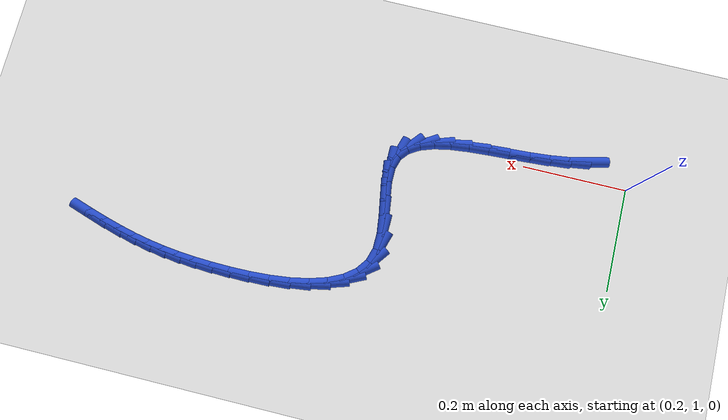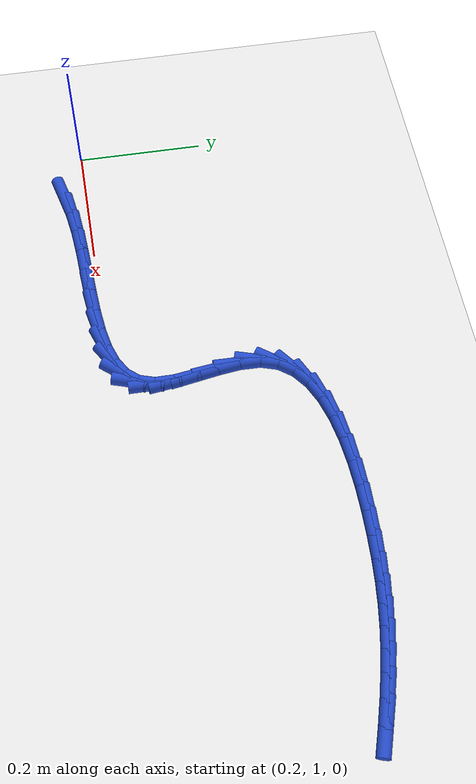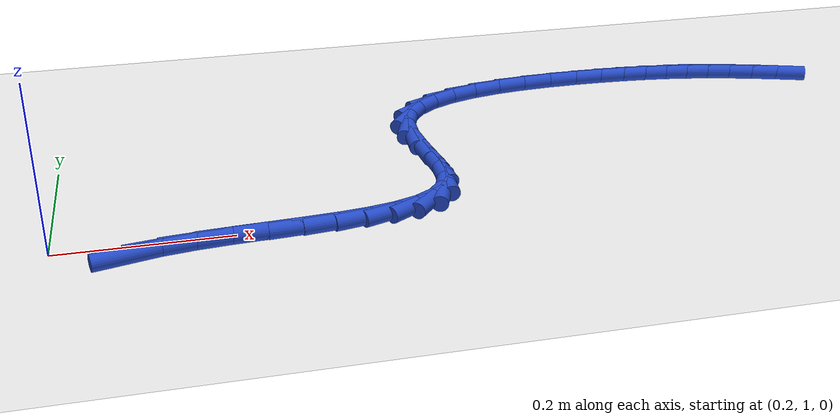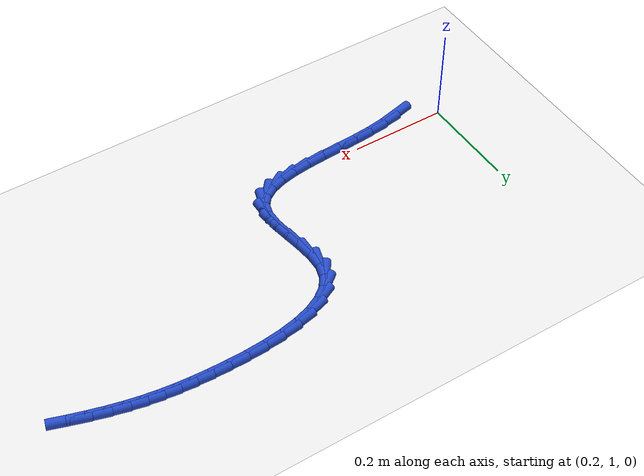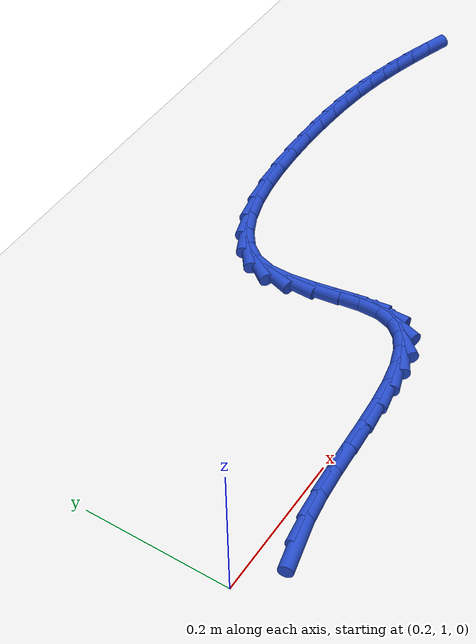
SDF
<sdf version="1.6">
 <world name="default">
  <model name="ground_plane">
   <static>1</static>
   <link name="link">
    <collision name="collision">
     <geometry><plane><normal>0 0 1</normal><size>100 100</size></plane></geometry>
     <surface><friction><ode><mu>100</mu><mu2>50</mu2></ode></friction></surface>
    </collision>
    <visual name="visual">
     <cast_shadows>0</cast_shadows>
     <geometry><plane><normal>0 0 1</normal><size>100 100</size></plane></geometry>
     <material>
      <script><uri>file://media/materials/scripts/gazebo.material</uri><name>Gazebo/WhiteGlow</name></script>
     </material>
    </visual>
   </link>
  </model>
  <model name="line">
   <link name="link_32">
    <pose>0.2845700762271755 0.9653608991584091 0.01 0 1.57 0.2323511931777744</pose>
    <collision name="collision">
     <geometry><cylinder><radius>0.01</radius><length>0.08</length></cylinder></geometry>
    </collision>
    <visual name="visual">
     <material>
      <script><name>Gazebo/Blue</name><uri>file://media/materials/scripts/gazebo.material</uri></script>
     </material>
     <geometry><cylinder><radius>0.01</radius><length>0.08</length></cylinder></geometry>
    </visual>
   </link>
   <link name="link_33">
    <pose>0.31895210548877895 0.9734965408472075 0.01 0 1.57 0.14312621092465375</pose>
    <collision name="collision">
     <geometry><cylinder><radius>0.01</radius><length>0.08</length></cylinder></geometry>
    </collision>
    <visual name="visual">
     <material>
      <script><name>Gazebo/Blue</name><uri>file://media/materials/scripts/gazebo.material</uri></script>
     </material>
     <geometry><cylinder><radius>0.01</radius><length>0.08</length></cylinder></geometry>
    </visual>
   </link>
   <link name="link_34">
    <pose>0.35610202098449195 0.97885027479149 0.01 0 1.57 0.08759053638613644</pose>
    <collision name="collision">
     <geometry><cylinder><radius>0.01</radius><length>0.08</length></cylinder></geometry>
    </collision>
    <visual name="visual">
     <material>
      <script><name>Gazebo/Blue</name><uri>file://media/materials/scripts/gazebo.material</uri></script>
     </material>
     <geometry><cylinder><radius>0.01</radius><length>0.08</length></cylinder></geometry>
    </visual>
   </link>
   <link name="link_35">
    <pose>0.3949763139941072 0.9822640296616401 0.01 0 1.57 0.058476926967701306</pose>
    <collision name="collision">
     <geometry><cylinder><radius>0.01</radius><length>0.08</length></cylinder></geometry>
    </collision>
    <visual name="visual">
     <material>
      <script><name>Gazebo/Blue</name><uri>file://media/materials/scripts/gazebo.material</uri></script>
     </material>
     <geometry><cylinder><radius>0.01</radius><length>0.08</length></cylinder></geometry>
    </visual>
   </link>
   <link name="link_36">
    <pose>0.43453147579741785 0.9845797341280421 0.01 0 1.57 0.052502107369102845</pose>
    <collision name="collision">
     <geometry><cylinder><radius>0.01</radius><length>0.08</length></cylinder></geometry>
    </collision>
    <visual name="visual">
     <material>
      <script><name>Gazebo/Blue</name><uri>file://media/materials/scripts/gazebo.material</uri></script>
     </material>
     <geometry><cylinder><radius>0.01</radius><length>0.08</length></cylinder></geometry>
    </visual>
   </link>
   <link name="link_37">
    <pose>0.47372399767421725 0.9866393168610799 0.01 0 1.57 0.06989504903849242</pose>
    <collision name="collision">
     <geometry><cylinder><radius>0.01</radius><length>0.08</length></cylinder></geometry>
    </collision>
    <visual name="visual">
     <material>
      <script><name>Gazebo/Blue</name><uri>file://media/materials/scripts/gazebo.material</uri></script>
     </material>
     <geometry><cylinder><radius>0.01</radius><length>0.08</length></cylinder></geometry>
    </visual>
   </link>
   <link name="link_38">
    <pose>0.5115103709042979 0.9892847065311378 0.01 0 1.57 0.11475964148842825</pose>
    <collision name="collision">
     <geometry><cylinder><radius>0.01</radius><length>0.08</length></cylinder></geometry>
    </collision>
    <visual name="visual">
     <material>
      <script><name>Gazebo/Blue</name><uri>file://media/materials/scripts/gazebo.material</uri></script>
     </material>
     <geometry><cylinder><radius>0.01</radius><length>0.08</length></cylinder></geometry>
    </visual>
   </link>
   <link name="link_39">
    <pose>0.5468470867674531 0.9933578318085992 0.01 0 1.57 0.19661275269953515</pose>
    <collision name="collision">
     <geometry><cylinder><radius>0.01</radius><length>0.08</length></cylinder></geometry>
    </collision>
    <visual name="visual">
     <material>
      <script><name>Gazebo/Blue</name><uri>file://media/materials/scripts/gazebo.material</uri></script>
     </material>
     <geometry><cylinder><radius>0.01</radius><length>0.08</length></cylinder></geometry>
    </visual>
   </link>
   <link name="link_40">
    <pose>0.5786906365434755 0.9997006213638486 0.01 0 1.57 0.33330979281576223</pose>
    <collision name="collision">
     <geometry><cylinder><radius>0.01</radius><length>0.08</length></cylinder></geometry>
    </collision>
    <visual name="visual">
     <material>
      <script><name>Gazebo/Blue</name><uri>file://media/materials/scripts/gazebo.material</uri></script>
     </material>
     <geometry><cylinder><radius>0.01</radius><length>0.08</length></cylinder></geometry>
    </visual>
   </link>
   <link name="link_41">
    <pose>0.6059975115121591 1.0091550038672705 0.01 0 1.57 0.5529103301493403</pose>
    <collision name="collision">
     <geometry><cylinder><radius>0.01</radius><length>0.08</length></cylinder></geometry>
    </collision>
    <visual name="visual">
     <material>
      <script><name>Gazebo/Blue</name><uri>file://media/materials/scripts/gazebo.material</uri></script>
     </material>
     <geometry><cylinder><radius>0.01</radius><length>0.08</length></cylinder></geometry>
    </visual>
   </link>
   <link name="link_42">
    <pose>0.6277242029532957 1.0225629079892478 0.01 0 1.57 0.878216688704699</pose>
    <collision name="collision">
     <geometry><cylinder><radius>0.01</radius><length>0.08</length></cylinder></geometry>
    </collision>
    <visual name="visual">
     <material>
      <script><name>Gazebo/Blue</name><uri>file://media/materials/scripts/gazebo.material</uri></script>
     </material>
     <geometry><cylinder><radius>0.01</radius><length>0.08</length></cylinder></geometry>
    </visual>
   </link>
   <link name="link_43">
    <pose>0.6428272021466788 1.0407662624001652 0.01 0 1.57 1.2678326695225448</pose>
    <collision name="collision">
     <geometry><cylinder><radius>0.01</radius><length>0.08</length></cylinder></geometry>
    </collision>
    <visual name="visual">
     <material>
      <script><name>Gazebo/Blue</name><uri>file://media/materials/scripts/gazebo.material</uri></script>
     </material>
     <geometry><cylinder><radius>0.01</radius><length>0.08</length></cylinder></geometry>
    </visual>
   </link>
   <link name="link_44">
    <pose>0.6502765298399066 1.0645975156520313 0.01 0 1.57 1.5665873825607752</pose>
    <collision name="collision">
     <geometry><cylinder><radius>0.01</radius><length>0.08</length></cylinder></geometry>
    </collision>
    <visual name="visual">
     <material>
      <script><name>Gazebo/Blue</name><uri>file://media/materials/scripts/gazebo.material</uri></script>
     </material>
     <geometry><cylinder><radius>0.01</radius><length>0.08</length></cylinder></geometry>
    </visual>
   </link>
   <link name="link_45">
    <pose>0.6504000217407532 1.0939376933184923 0.01 0 1.57 -1.4388866192588754</pose>
    <collision name="collision">
     <geometry><cylinder><radius>0.01</radius><length>0.08</length></cylinder></geometry>
    </collision>
    <visual name="visual">
     <material>
      <script><name>Gazebo/Blue</name><uri>file://media/materials/scripts/gazebo.material</uri></script>
     </material>
     <geometry><cylinder><radius>0.01</radius><length>0.08</length></cylinder></geometry>
    </visual>
   </link>
   <link name="link_46">
    <pose>0.6460243365846805 1.1269168919312207 0.01 0 1.57 -1.4050988027880247</pose>
    <collision name="collision">
     <geometry><cylinder><radius>0.01</radius><length>0.08</length></cylinder></geometry>
    </collision>
    <visual name="visual">
     <material>
      <script><name>Gazebo/Blue</name><uri>file://media/materials/scripts/gazebo.material</uri></script>
     </material>
     <geometry><cylinder><radius>0.01</radius><length>0.08</length></cylinder></geometry>
    </visual>
   </link>
   <link name="link_47">
    <pose>0.6402448335303893 1.1614769292324616 0.01 0 1.57 -1.451424134062492</pose>
    <collision name="collision">
     <geometry><cylinder><radius>0.01</radius><length>0.08</length></cylinder></geometry>
    </collision>
    <visual name="visual">
     <material>
      <script><name>Gazebo/Blue</name><uri>file://media/materials/scripts/gazebo.material</uri></script>
     </material>
     <geometry><cylinder><radius>0.01</radius><length>0.08</length></cylinder></geometry>
    </visual>
   </link>
   <link name="link_48">
    <pose>0.6361568717365808 1.1955596229644632 0.01 0 1.57 1.5486445982817794</pose>
    <collision name="collision">
     <geometry><cylinder><radius>0.01</radius><length>0.08</length></cylinder></geometry>
    </collision>
    <visual name="visual">
     <material>
      <script><name>Gazebo/Blue</name><uri>file://media/materials/scripts/gazebo.material</uri></script>
     </material>
     <geometry><cylinder><radius>0.01</radius><length>0.08</length></cylinder></geometry>
    </visual>
   </link>
   <link name="link_49">
    <pose>0.6368558103619562 1.22710679086947 0.01 0 1.57 1.2722423378001668</pose>
    <collision name="collision">
     <geometry><cylinder><radius>0.01</radius><length>0.08</length></cylinder></geometry>
    </collision>
    <visual name="visual">
     <material>
      <script><name>Gazebo/Blue</name><uri>file://media/materials/scripts/gazebo.material</uri></script>
     </material>
     <geometry><cylinder><radius>0.01</radius><length>0.08</length></cylinder></geometry>
    </visual>
   </link>
   <link name="link_50">
    <pose>0.6451943814043819 1.2542018393619834 0.01 0 1.57 0.9376428209108588</pose>
    <collision name="collision">
     <geometry><cylinder><radius>0.01</radius><length>0.08</length></cylinder></geometry>
    </collision>
    <visual name="visual">
     <material>
      <script><name>Gazebo/Blue</name><uri>file://media/materials/scripts/gazebo.material</uri></script>
     </material>
     <geometry><cylinder><radius>0.01</radius><length>0.08</length></cylinder></geometry>
    </visual>
   </link>
   <link name="link_51">
    <pose>0.6614917498632273 1.2764066753926713 0.01 0 1.57 0.6560295995454712</pose>
    <collision name="collision">
     <geometry><cylinder><radius>0.01</radius><length>0.08</length></cylinder></geometry>
    </collision>
    <visual name="visual">
     <material>
      <script><name>Gazebo/Blue</name><uri>file://media/materials/scripts/gazebo.material</uri></script>
     </material>
     <geometry><cylinder><radius>0.01</radius><length>0.08</length></cylinder></geometry>
    </visual>
   </link>
   <link name="link_52">
    <pose>0.6845592137779092 1.294163144003472 0.01 0 1.57 0.44808116099991324</pose>
    <collision name="collision">
     <geometry><cylinder><radius>0.01</radius><length>0.08</length></cylinder></geometry>
    </collision>
    <visual name="visual">
     <material>
      <script><name>Gazebo/Blue</name><uri>file://media/materials/scripts/gazebo.material</uri></script>
     </material>
     <geometry><cylinder><radius>0.01</radius><length>0.08</length></cylinder></geometry>
    </visual>
   </link>
   <link name="link_53">
    <pose>0.7131880645191384 1.3079247654240826 0.01 0 1.57 0.30049558620867545</pose>
    <collision name="collision">
     <geometry><cylinder><radius>0.01</radius><length>0.08</length></cylinder></geometry>
    </collision>
    <visual name="visual">
     <material>
      <script><name>Gazebo/Blue</name><uri>file://media/materials/scripts/gazebo.material</uri></script>
     </material>
     <geometry><cylinder><radius>0.01</radius><length>0.08</length></cylinder></geometry>
    </visual>
   </link>
   <link name="link_54">
    <pose>0.746169593457626 1.3181450598841995 0.01 0 1.57 0.194929331847569</pose>
    <collision name="collision">
     <geometry><cylinder><radius>0.01</radius><length>0.08</length></cylinder></geometry>
    </collision>
    <visual name="visual">
     <material>
      <script><name>Gazebo/Blue</name><uri>file://media/materials/scripts/gazebo.material</uri></script>
     </material>
     <geometry><cylinder><radius>0.01</radius><length>0.08</length></cylinder></geometry>
    </visual>
   </link>
   <link name="link_55">
    <pose>0.7822950919640842 1.3252775476135201 0.01 0 1.57 0.11763905921892041</pose>
    <collision name="collision">
     <geometry><cylinder><radius>0.01</radius><length>0.08</length></cylinder></geometry>
    </collision>
    <visual name="visual">
     <material>
      <script><name>Gazebo/Blue</name><uri>file://media/materials/scripts/gazebo.material</uri></script>
     </material>
     <geometry><cylinder><radius>0.01</radius><length>0.08</length></cylinder></geometry>
    </visual>
   </link>
   <link name="link_56">
    <pose>0.8203558514092228 1.3297757488417417 0.01 0 1.57 0.05967630139571058</pose>
    <collision name="collision">
     <geometry><cylinder><radius>0.01</radius><length>0.08</length></cylinder></geometry>
    </collision>
    <visual name="visual">
     <material>
      <script><name>Gazebo/Blue</name><uri>file://media/materials/scripts/gazebo.material</uri></script>
     </material>
     <geometry><cylinder><radius>0.01</radius><length>0.08</length></cylinder></geometry>
    </visual>
   </link>
   <link name="link_57">
    <pose>0.8591431631637547 1.3320931837985612 0.01 0 1.57 0.015406339247521123</pose>
    <collision name="collision">
     <geometry><cylinder><radius>0.01</radius><length>0.08</length></cylinder></geometry>
    </collision>
    <visual name="visual">
     <material>
      <script><name>Gazebo/Blue</name><uri>file://media/materials/scripts/gazebo.material</uri></script>
     </material>
     <geometry><cylinder><radius>0.01</radius><length>0.08</length></cylinder></geometry>
    </visual>
   </link>
   <link name="link_58">
    <pose>0.8974483185983897 1.3326833727136753 0.01 0 1.57 -0.01866668871540023</pose>
    <collision name="collision">
     <geometry><cylinder><radius>0.01</radius><length>0.08</length></cylinder></geometry>
    </collision>
    <visual name="visual">
     <material>
      <script><name>Gazebo/Blue</name><uri>file://media/materials/scripts/gazebo.material</uri></script>
     </material>
     <geometry><cylinder><radius>0.01</radius><length>0.08</length></cylinder></geometry>
    </visual>
   </link>
   <link name="link_59">
    <pose>0.9340626460760861 1.3319998250653 0.01 0 1.57 -0.04717963091116481</pose>
    <collision name="collision">
     <geometry><cylinder><radius>0.01</radius><length>0.08</length></cylinder></geometry>
    </collision>
    <visual name="visual">
     <material>
      <script><name>Gazebo/Blue</name><uri>file://media/materials/scripts/gazebo.material</uri></script>
     </material>
     <geometry><cylinder><radius>0.01</radius><length>0.08</length></cylinder></geometry>
    </visual>
   </link>
   <link name="link_60">
    <pose>0.9681392240594682 1.330390910745923 0.01 0 1.57 -0.07963552685895688</pose>
    <collision name="collision">
     <geometry><cylinder><radius>0.01</radius><length>0.08</length></cylinder></geometry>
    </collision>
    <visual name="visual">
     <material>
      <script><name>Gazebo/Blue</name><uri>file://media/materials/scripts/gazebo.material</uri></script>
     </material>
     <geometry><cylinder><radius>0.01</radius><length>0.08</length></cylinder></geometry>
    </visual>
   </link>
   <link name="link_61">
    <pose>1.000080602457379 1.3278418514129569 0.01 0 1.57 -0.1170002863810487</pose>
    <collision name="collision">
     <geometry><cylinder><radius>0.01</radius><length>0.08</length></cylinder></geometry>
    </collision>
    <visual name="visual">
     <material>
      <script><name>Gazebo/Blue</name><uri>file://media/materials/scripts/gazebo.material</uri></script>
     </material>
     <geometry><cylinder><radius>0.01</radius><length>0.08</length></cylinder></geometry>
    </visual>
   </link>
   <link name="link_62">
    <pose>1.030558900934862 1.324259520569885 0.01 0 1.57 -0.15730032641291075</pose>
    <collision name="collision">
     <geometry><cylinder><radius>0.01</radius><length>0.08</length></cylinder></geometry>
    </collision>
    <visual name="visual">
     <material>
      <script><name>Gazebo/Blue</name><uri>file://media/materials/scripts/gazebo.material</uri></script>
     </material>
     <geometry><cylinder><radius>0.01</radius><length>0.08</length></cylinder></geometry>
    </visual>
   </link>
   <link name="link_63">
    <pose>1.0602462391569634 1.3195507917201923 0.01 0 1.57 -0.19786879114366193</pose>
    <collision name="collision">
     <geometry><cylinder><radius>0.01</radius><length>0.08</length></cylinder></geometry>
    </collision>
    <visual name="visual">
     <material>
      <script><name>Gazebo/Blue</name><uri>file://media/materials/scripts/gazebo.material</uri></script>
     </material>
     <geometry><cylinder><radius>0.01</radius><length>0.08</length></cylinder></geometry>
    </visual>
   </link>
   <link name="link_64">
    <pose>1.0898147367887265 1.313622538367363 0.01 0 1.57 -0.2359115247043446</pose>
    <collision name="collision">
     <geometry><cylinder><radius>0.01</radius><length>0.08</length></cylinder></geometry>
    </collision>
    <visual name="visual">
     <material>
      <script><name>Gazebo/Blue</name><uri>file://media/materials/scripts/gazebo.material</uri></script>
     </material>
     <geometry><cylinder><radius>0.01</radius><length>0.08</length></cylinder></geometry>
    </visual>
   </link>
   <link name="link_65">
    <pose>1.1199365134951969 1.3063816340148815 0.01 0 1.57 -0.26914333723932476</pose>
    <collision name="collision">
     <geometry><cylinder><radius>0.01</radius><length>0.08</length></cylinder></geometry>
    </collision>
    <visual name="visual">
     <material>
      <script><name>Gazebo/Blue</name><uri>file://media/materials/scripts/gazebo.material</uri></script>
     </material>
     <geometry><cylinder><radius>0.01</radius><length>0.08</length></cylinder></geometry>
    </visual>
   </link>
   <link name="link_66">
    <pose>1.15128368894142 1.2977349521662322 0.01 0 1.57 -0.2962014660045895</pose>
    <collision name="collision">
     <geometry><cylinder><radius>0.01</radius><length>0.08</length></cylinder></geometry>
    </collision>
    <visual name="visual">
     <material>
      <script><name>Gazebo/Blue</name><uri>file://media/materials/scripts/gazebo.material</uri></script>
     </material>
     <geometry><cylinder><radius>0.01</radius><length>0.08</length></cylinder></geometry>
    </visual>
   </link>
   <link name="link_67">
    <pose>1.1845283827924395 1.2875893663248998 0.01 0 1.57 -0.31699612338359107</pose>
    <collision name="collision">
     <geometry><cylinder><radius>0.01</radius><length>0.08</length></cylinder></geometry>
    </collision>
    <visual name="visual">
     <material>
      <script><name>Gazebo/Blue</name><uri>file://media/materials/scripts/gazebo.material</uri></script>
     </material>
     <geometry><cylinder><radius>0.01</radius><length>0.08</length></cylinder></geometry>
    </visual>
   </link>
  </model>
 </world>
</sdf>
